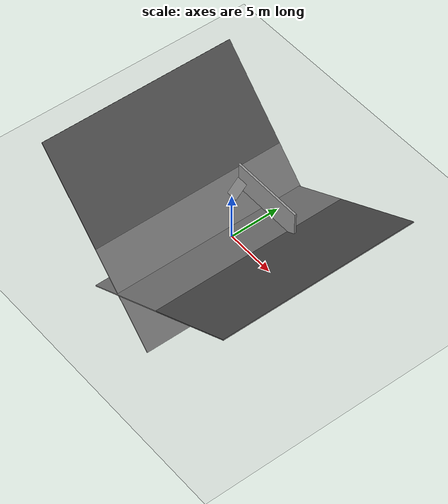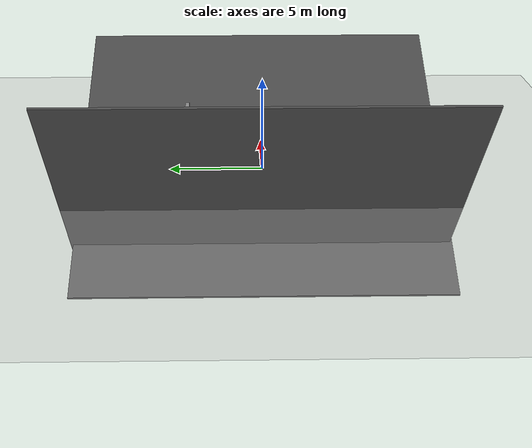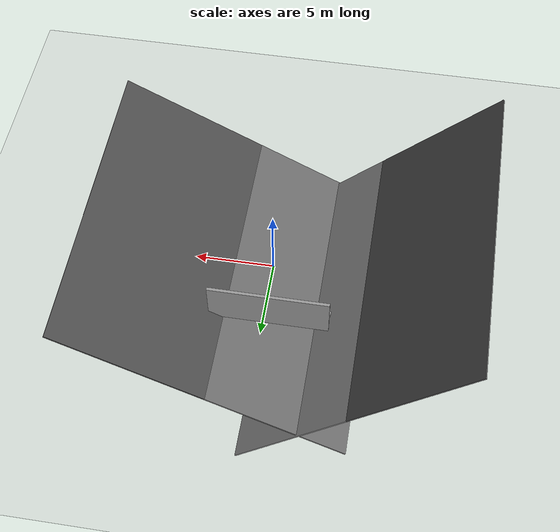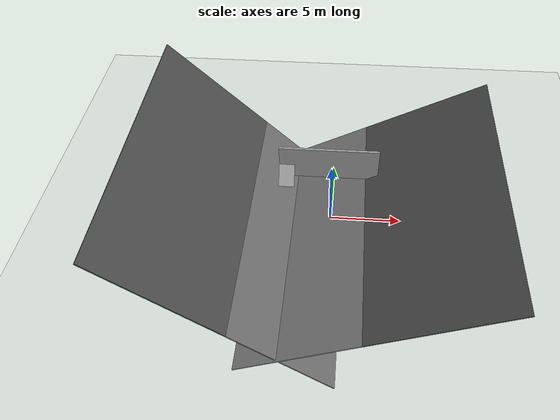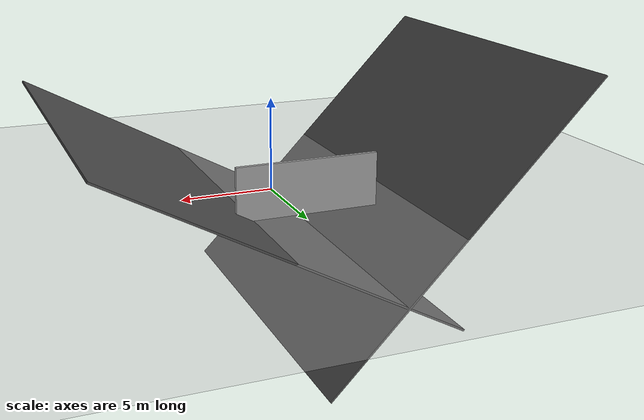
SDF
<sdf version="1.6">
 <world name="default">
  <plugin name="ros_interface_plugin" filename="librotors_gazebo_ros_interface_plugin.so"/>
  <light name="sun" type="directional">
   <pose>0 0 10 0 -0 0</pose>
   <diffuse>0.8 0.8 0.8 1</diffuse>
   <specular>0.2 0.2 0.2 1</specular>
   <attenuation>
    <range>1000</range>
    <constant>0.9</constant>
    <linear>0.01</linear>
    <quadratic>0.001</quadratic>
   </attenuation>
   <direction>-0.5 0.1 -0.9</direction>
  </light>
  <model name="ground_plane">
   <static>1</static>
   <link name="link">
    <collision name="collision">
     <geometry><plane><normal>0 0 1</normal><size>100 100</size></plane></geometry>
     <surface>
      <contact><collide_bitmask>65535</collide_bitmask></contact>
      <friction><ode><mu>100</mu><mu2>50</mu2></ode></friction>
     </surface>
    </collision>
    <visual name="visual">
     <cast_shadows>0</cast_shadows>
     <geometry><plane><normal>0 0 1</normal><size>100 100</size></plane></geometry>
     <material>
      <script><uri>file://media/materials/scripts/gazebo.material</uri><name>Gazebo/Grey</name></script>
     </material>
    </visual>
   </link>
  </model>
  <gravity>0 0 -9.8</gravity>
  <magnetic_field>6e-06 2.3e-05 -4.2e-05</magnetic_field>
  <atmosphere type="adiabatic"/>
  <physics name="default_physics" default="0" type="ode">
   <max_step_size>0.001</max_step_size>
   <real_time_factor>1</real_time_factor>
   <real_time_update_rate>1000</real_time_update_rate>
  </physics>
  <scene><ambient>0.4 0.4 0.4 1</ambient><background>0.7 0.7 0.7 1</background><shadows>1</shadows></scene>
  <spherical_coordinates>
   <surface_model>EARTH_WGS84</surface_model>
   <latitude_deg>0</latitude_deg>
   <longitude_deg>0</longitude_deg>
   <elevation>0</elevation>
   <heading_deg>0</heading_deg>
  </spherical_coordinates>
  <model name="grey_wall">
   <static>1</static>
   <link name="link">
    <pose>0 0 1.4 0 -0 0</pose>
    <collision name="collision"><geometry><box><size>7.5 0.2 2.8</size></box></geometry></collision>
    <visual name="visual">
     <cast_shadows>0</cast_shadows>
     <geometry><box><size>7.5 0.2 2.8</size></box></geometry>
     <material>
      <script>
       <uri>model://grey_wall/materials/scripts</uri>
       <uri>model://grey_wall/materials/textures</uri>
       <name>vrc/grey_wall</name>
      </script>
     </material>
    </visual>
   </link>
   <pose>-0.361263 4.11827 0 0 -0 0</pose>
  </model>
  <model name="nist_simple_ramp_120">
   <static>1</static>
   <link name="nist_simple_ramp_120_link">
    <collision name="collision">
     <geometry>
      <mesh><uri>model://nist_simple_ramp_120/meshes/nist_simple_ramp_120.dae</uri><scale>1 1 1</scale></mesh>
     </geometry>
    </collision>
    <visual name="visual">
     <geometry>
      <mesh><uri>model://nist_simple_ramp_120/meshes/nist_simple_ramp_120.dae</uri><scale>1 1 1</scale></mesh>
     </geometry>
    </visual>
   </link>
   <pose>-3.53534 3.41317 0 0 -0 0</pose>
  </model>
  <model name="asphalt_plane">
   <static>1</static>
   <link name="link">
    <collision name="collision"><geometry><box><size>20 20 0.1</size></box></geometry></collision>
    <visual name="visual">
     <cast_shadows>0</cast_shadows>
     <geometry><box><size>20 20 0.1</size></box></geometry>
     <material>
      <script>
       <uri>model://asphalt_plane/materials/scripts</uri>
       <uri>model://asphalt_plane/materials/textures</uri>
       <name>vrc/asphalt</name>
      </script>
     </material>
    </visual>
   </link>
   <pose>2.64715 0.021326 0 0 -0.5 0</pose>
  </model>
  <model name="asphalt_plane_clone">
   <static>1</static>
   <link name="link">
    <collision name="collision"><geometry><box><size>20 20 0.1</size></box></geometry></collision>
    <visual name="visual">
     <cast_shadows>0</cast_shadows>
     <geometry><box><size>20 20 0.1</size></box></geometry>
     <material>
      <script>
       <uri>model://asphalt_plane/materials/scripts</uri>
       <uri>model://asphalt_plane/materials/textures</uri>
       <name>vrc/asphalt</name>
      </script>
     </material>
    </visual>
   </link>
   <pose>-6.06411 0.133098 0 0 0.8 0</pose>
  </model>
 </world>
</sdf>
